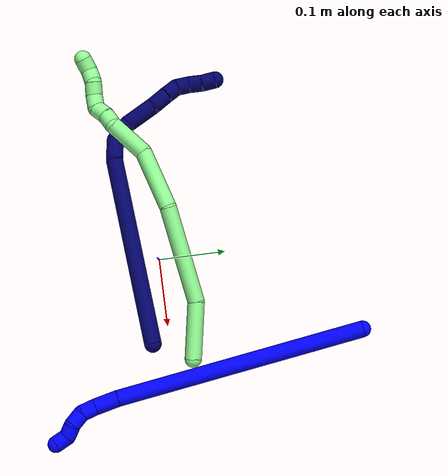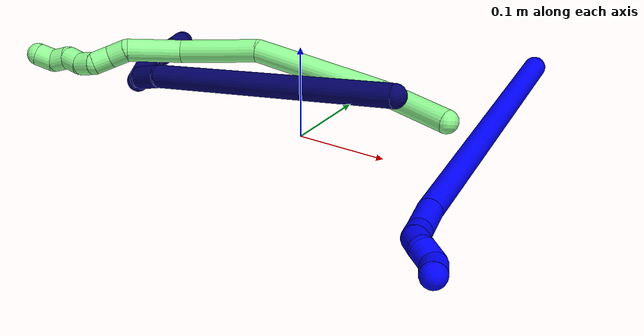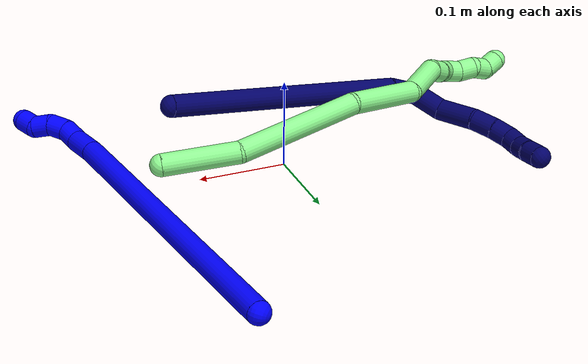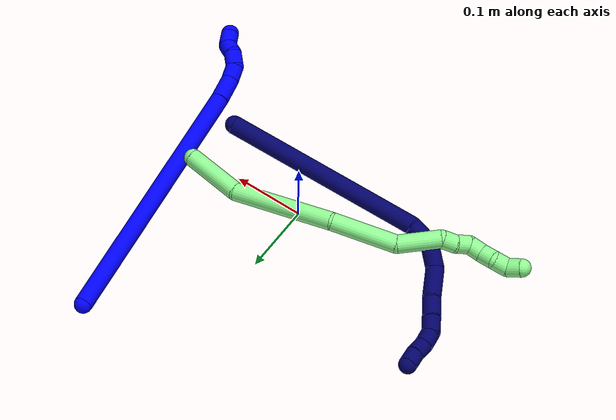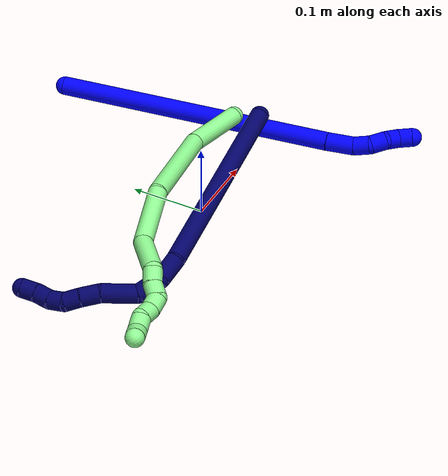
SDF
<sdf version="1.7">
 <world name="default">
  <model name="photoneo_s_sensor">
   <static>1</static>
   <pose>0 0 2 1.57079 1.57079 3.14159</pose>
   <link name="link">
    <inertial><mass>0.1</mass></inertial>
    <sensor name="sensor" type="depth">
     <update_rate>30</update_rate>
     <camera>
      <horizontal_fov>1.22</horizontal_fov>
      <image><width>1920</width><height>1200</height><format>B8G8R8</format></image>
      <clip><near>0.1</near><far>4</far></clip>
      <depth_camera><output>points</output></depth_camera>
     </camera>
     <plugin name="camera_plugin" filename="libgazebo_ros_depth_camera.so">
      <baseline>0.2</baseline>
      <alwaysOn>1</alwaysOn>
      <updateRate>0.0</updateRate>
      <cameraName>camera_ir</cameraName>
      <imageTopicName>/camera/color/image_raw</imageTopicName>
      <cameraInfoTopicName>/camera/color/camera_info</cameraInfoTopicName>
      <depthImageTopicName>/camera/depth/image_raw</depthImageTopicName>
      <depthImageCameraInfoTopicName>/camera/depth/camera_info</depthImageCameraInfoTopicName>
      <pointCloudTopicName>/camera/depth/points</pointCloudTopicName>
      <frameName>fr_optical</frameName>
      <pointCloudCutoff>0.1</pointCloudCutoff>
      <pointCloudCutoffMax>2.0</pointCloudCutoffMax>
      <distortionK1>0</distortionK1>
      <distortionK2>0</distortionK2>
      <distortionK3>0</distortionK3>
      <distortionT1>0</distortionT1>
      <distortionT2>0</distortionT2>
      <CxPrime>0</CxPrime>
      <Cx>0</Cx>
      <Cy>0</Cy>
      <focalLength>0</focalLength>
      <hackBaseline>0</hackBaseline>
     </plugin>
    </sensor>
   </link>
  </model>
  <model name="bin">
   <static>1</static>
   <link name="bottom">
    <collision name="collision-bottom">
     <pose>0 0 -0.01 0 -0 0</pose>
     <geometry><box><size>0.8 0.6 0.02</size></box></geometry>
     <surface>
      <friction><ode><mu>100</mu><mu2>100</mu2></ode></friction>
      <contact><collide_bitmask>65535</collide_bitmask></contact>
     </surface>
    </collision>
   </link>
   <link name="west_wall">
    <collision name="collision-west_wall">
     <pose>-0.41 0 0.1 0 -0 0</pose>
     <geometry><box><size>0.02 0.6 0.2</size></box></geometry>
     <surface>
      <friction><ode><mu>100</mu><mu2>100</mu2></ode></friction>
      <contact><collide_bitmask>65535</collide_bitmask></contact>
     </surface>
    </collision>
   </link>
   <link name="east_wall">
    <collision name="collision-east_wall">
     <pose>0.41 0 0.1 0 -0 0</pose>
     <geometry><box><size>0.02 0.6 0.2</size></box></geometry>
     <surface>
      <friction><ode><mu>100</mu><mu2>100</mu2></ode></friction>
      <contact><collide_bitmask>65535</collide_bitmask></contact>
     </surface>
    </collision>
   </link>
   <link name="south_wall">
    <collision name="collision-south_wall">
     <pose>0 -0.31 0.1 0 -0 0</pose>
     <geometry><box><size>0.8 0.02 0.2</size></box></geometry>
     <surface>
      <friction><ode><mu>100</mu><mu2>100</mu2></ode></friction>
      <contact><collide_bitmask>65535</collide_bitmask></contact>
     </surface>
    </collision>
   </link>
   <link name="north_wall">
    <collision name="collision-north_wall">
     <pose>0 0.31 0.1 0 -0 0</pose>
     <geometry><box><size>0.8 0.02 0.2</size></box></geometry>
     <surface>
      <friction><ode><mu>100</mu><mu2>100</mu2></ode></friction>
      <contact><collide_bitmask>65535</collide_bitmask></contact>
     </surface>
    </collision>
   </link>
  </model>
  <model name="1">
   <static>0</static>
   <link name="1">
    <collision name="collision-cylinder-e_1_1_4">
     <pose>-0.042303 -0.108817 -0.149277 2.51169 -0.225121 -0.66793</pose>
     <geometry><cylinder><radius>0.0125</radius><length>0.379021</length></cylinder></geometry>
     <surface>
      <friction><ode><mu>1.16</mu><mu2>1.16</mu2><slip1>0</slip1><slip2>0</slip2></ode></friction>
      <contact><ode><kp>1e+06</kp><kd>1</kd><max_vel>0</max_vel><min_depth>0.001</min_depth></ode></contact>
     </surface>
    </collision>
    <visual name="visual-cylinder-e_1_1_4">
     <pose>-0.042303 -0.108817 -0.149277 2.51169 -0.225121 -0.66793</pose>
     <geometry><cylinder><radius>0.0125</radius><length>0.379021</length></cylinder></geometry>
     <material><ambient>0 0 1 1</ambient></material>
    </visual>
    <collision name="collision-cylinder-e_2_4_5">
     <pose>-0.089009 -0.22689 -0.313924 2.5996 -0.240593 -0.820768</pose>
     <geometry><cylinder><radius>0.0125</radius><length>0.036948</length></cylinder></geometry>
     <surface>
      <friction><ode><mu>1.16</mu><mu2>1.16</mu2><slip1>0</slip1><slip2>0</slip2></ode></friction>
      <contact><ode><kp>1e+06</kp><kd>1</kd><max_vel>0</max_vel><min_depth>0.001</min_depth></ode></contact>
     </surface>
    </collision>
    <visual name="visual-cylinder-e_2_4_5">
     <pose>-0.089009 -0.22689 -0.313924 2.5996 -0.240593 -0.820768</pose>
     <geometry><cylinder><radius>0.0125</radius><length>0.036948</length></cylinder></geometry>
     <material><ambient>0 0 1 1</ambient></material>
    </visual>
    <collision name="collision-cylinder-e_3_5_6">
     <pose>-0.093343 -0.241289 -0.339176 2.66167 0.006055 0.024747</pose>
     <geometry><cylinder><radius>0.0125</radius><length>0.022282</length></cylinder></geometry>
     <surface>
      <friction><ode><mu>1.16</mu><mu2>1.16</mu2><slip1>0</slip1><slip2>0</slip2></ode></friction>
      <contact><ode><kp>1e+06</kp><kd>1</kd><max_vel>0</max_vel><min_depth>0.001</min_depth></ode></contact>
     </surface>
    </collision>
    <visual name="visual-cylinder-e_3_5_6">
     <pose>-0.093343 -0.241289 -0.339176 2.66167 0.006055 0.024747</pose>
     <geometry><cylinder><radius>0.0125</radius><length>0.022282</length></cylinder></geometry>
     <material><ambient>0 0 1 1</ambient></material>
    </visual>
    <collision name="collision-cylinder-e_4_6_7">
     <pose>-0.09368 -0.246683 -0.359862 3.11847 -0.037419 -2.03448</pose>
     <geometry><cylinder><radius>0.0125</radius><length>0.021628</length></cylinder></geometry>
     <surface>
      <friction><ode><mu>1.16</mu><mu2>1.16</mu2><slip1>0</slip1><slip2>0</slip2></ode></friction>
      <contact><ode><kp>1e+06</kp><kd>1</kd><max_vel>0</max_vel><min_depth>0.001</min_depth></ode></contact>
     </surface>
    </collision>
    <visual name="visual-cylinder-e_4_6_7">
     <pose>-0.09368 -0.246683 -0.359862 3.11847 -0.037419 -2.03448</pose>
     <geometry><cylinder><radius>0.0125</radius><length>0.021628</length></cylinder></geometry>
     <material><ambient>0 0 1 1</ambient></material>
    </visual>
    <collision name="collision-cylinder-e_5_7_8">
     <pose>-0.097488 -0.24413 -0.379679 -2.84015 -0.34609 1.7109</pose>
     <geometry><cylinder><radius>0.0125</radius><length>0.020068</length></cylinder></geometry>
     <surface>
      <friction><ode><mu>1.16</mu><mu2>1.16</mu2><slip1>0</slip1><slip2>0</slip2></ode></friction>
      <contact><ode><kp>1e+06</kp><kd>1</kd><max_vel>0</max_vel><min_depth>0.001</min_depth></ode></contact>
     </surface>
    </collision>
    <visual name="visual-cylinder-e_5_7_8">
     <pose>-0.097488 -0.24413 -0.379679 -2.84015 -0.34609 1.7109</pose>
     <geometry><cylinder><radius>0.0125</radius><length>0.020068</length></cylinder></geometry>
     <material><ambient>0 0 1 1</ambient></material>
    </visual>
    <collision name="collision-cylinder-e_6_8_2">
     <pose>-0.101852 -0.244468 -0.398166 2.82148 -0.095842 -0.577529</pose>
     <geometry><cylinder><radius>0.0125</radius><length>0.020053</length></cylinder></geometry>
     <surface>
      <friction><ode><mu>1.16</mu><mu2>1.16</mu2><slip1>0</slip1><slip2>0</slip2></ode></friction>
      <contact><ode><kp>1e+06</kp><kd>1</kd><max_vel>0</max_vel><min_depth>0.001</min_depth></ode></contact>
     </surface>
    </collision>
    <visual name="visual-cylinder-e_6_8_2">
     <pose>-0.101852 -0.244468 -0.398166 2.82148 -0.095842 -0.577529</pose>
     <geometry><cylinder><radius>0.0125</radius><length>0.020053</length></cylinder></geometry>
     <material><ambient>0 0 1 1</ambient></material>
    </visual>
    <collision name="collision-sphere-2">
     <pose>-0.102811 -0.247609 -0.407639 0 -0 0</pose>
     <geometry><sphere><radius>0.0125</radius></sphere></geometry>
     <surface>
      <friction><ode><mu>1.16</mu><mu2>1.16</mu2><slip1>0</slip1><slip2>0</slip2></ode></friction>
      <contact><ode><kp>1e+06</kp><kd>1</kd><max_vel>0</max_vel><min_depth>0.001</min_depth></ode></contact>
     </surface>
    </collision>
    <visual name="visual-sphere-2">
     <pose>-0.102811 -0.247609 -0.407639 0 -0 0</pose>
     <geometry><sphere><radius>0.0125</radius></sphere></geometry>
     <material><ambient>0 0 1 1</ambient></material>
    </visual>
    <collision name="collision-sphere-4">
     <pose>-0.084607 -0.217635 -0.298553 0 -0 0</pose>
     <geometry><sphere><radius>0.0125</radius></sphere></geometry>
     <surface>
      <friction><ode><mu>1.16</mu><mu2>1.16</mu2><slip1>0</slip1><slip2>0</slip2></ode></friction>
      <contact><ode><kp>1e+06</kp><kd>1</kd><max_vel>0</max_vel><min_depth>0.001</min_depth></ode></contact>
     </surface>
    </collision>
    <visual name="visual-sphere-4">
     <pose>-0.084607 -0.217635 -0.298553 0 -0 0</pose>
     <geometry><sphere><radius>0.0125</radius></sphere></geometry>
     <material><ambient>0 0 1 1</ambient></material>
    </visual>
    <collision name="collision-sphere-1">
     <geometry><sphere><radius>0.0125</radius></sphere></geometry>
     <surface>
      <friction><ode><mu>1.16</mu><mu2>1.16</mu2><slip1>0</slip1><slip2>0</slip2></ode></friction>
      <contact><ode><kp>1e+06</kp><kd>1</kd><max_vel>0</max_vel><min_depth>0.001</min_depth></ode></contact>
     </surface>
    </collision>
    <visual name="visual-sphere-1">
     <geometry><sphere><radius>0.0125</radius></sphere></geometry>
     <material><ambient>0 0 1 1</ambient></material>
    </visual>
    <collision name="collision-sphere-8">
     <pose>-0.100892 -0.241328 -0.388692 0 -0 0</pose>
     <geometry><sphere><radius>0.0125</radius></sphere></geometry>
     <surface>
      <friction><ode><mu>1.16</mu><mu2>1.16</mu2><slip1>0</slip1><slip2>0</slip2></ode></friction>
      <contact><ode><kp>1e+06</kp><kd>1</kd><max_vel>0</max_vel><min_depth>0.001</min_depth></ode></contact>
     </surface>
    </collision>
    <visual name="visual-sphere-8">
     <pose>-0.100892 -0.241328 -0.388692 0 -0 0</pose>
     <geometry><sphere><radius>0.0125</radius></sphere></geometry>
     <material><ambient>0 0 1 1</ambient></material>
    </visual>
    <collision name="collision-sphere-5">
     <pose>-0.093411 -0.236145 -0.329294 0 -0 0</pose>
     <geometry><sphere><radius>0.0125</radius></sphere></geometry>
     <surface>
      <friction><ode><mu>1.16</mu><mu2>1.16</mu2><slip1>0</slip1><slip2>0</slip2></ode></friction>
      <contact><ode><kp>1e+06</kp><kd>1</kd><max_vel>0</max_vel><min_depth>0.001</min_depth></ode></contact>
     </surface>
    </collision>
    <visual name="visual-sphere-5">
     <pose>-0.093411 -0.236145 -0.329294 0 -0 0</pose>
     <geometry><sphere><radius>0.0125</radius></sphere></geometry>
     <material><ambient>0 0 1 1</ambient></material>
    </visual>
    <collision name="collision-sphere-6">
     <pose>-0.093276 -0.246433 -0.349059 0 -0 0</pose>
     <geometry><sphere><radius>0.0125</radius></sphere></geometry>
     <surface>
      <friction><ode><mu>1.16</mu><mu2>1.16</mu2><slip1>0</slip1><slip2>0</slip2></ode></friction>
      <contact><ode><kp>1e+06</kp><kd>1</kd><max_vel>0</max_vel><min_depth>0.001</min_depth></ode></contact>
     </surface>
    </collision>
    <visual name="visual-sphere-6">
     <pose>-0.093276 -0.246433 -0.349059 0 -0 0</pose>
     <geometry><sphere><radius>0.0125</radius></sphere></geometry>
     <material><ambient>0 0 1 1</ambient></material>
    </visual>
    <collision name="collision-sphere-7">
     <pose>-0.094085 -0.246932 -0.370666 0 -0 0</pose>
     <geometry><sphere><radius>0.0125</radius></sphere></geometry>
     <surface>
      <friction><ode><mu>1.16</mu><mu2>1.16</mu2><slip1>0</slip1><slip2>0</slip2></ode></friction>
      <contact><ode><kp>1e+06</kp><kd>1</kd><max_vel>0</max_vel><min_depth>0.001</min_depth></ode></contact>
     </surface>
    </collision>
    <visual name="visual-sphere-7">
     <pose>-0.094085 -0.246932 -0.370666 0 -0 0</pose>
     <geometry><sphere><radius>0.0125</radius></sphere></geometry>
     <material><ambient>0 0 1 1</ambient></material>
    </visual>
    <inertial>
     <pose>-0.054855 -0.140281 -0.198244 0 -0 0</pose>
     <mass>0.5</mass>
     <inertia>
      <ixx>0.000728</ixx>
      <ixy>0</ixy>
      <ixz>0</ixz>
      <iyy>-0.005294</iyy>
      <iyz>0</iyz>
      <izz>0.003604</izz>
     </inertia>
    </inertial>
   </link>
   <pose>0.14253 0.288501 0.012597 -2.43681 -1.34614 1.64263</pose>
  </model>
  <model name="7">
   <static>0</static>
   <link name="7">
    <collision name="collision-cylinder-e_1_1_4">
     <pose>-0.116466 -0.022878 0.072906 0.304074 -0.990158 -0.165079</pose>
     <geometry><cylinder><radius>0.0125</radius><length>0.27859</length></cylinder></geometry>
     <surface>
      <friction><ode><mu>1.16</mu><mu2>1.16</mu2><slip1>0</slip1><slip2>0</slip2></ode></friction>
      <contact><ode><kp>1e+06</kp><kd>1</kd><max_vel>0</max_vel><min_depth>0.001</min_depth></ode></contact>
     </surface>
    </collision>
    <visual name="visual-cylinder-e_1_1_4">
     <pose>-0.116466 -0.022878 0.072906 0.304074 -0.990158 -0.165079</pose>
     <geometry><cylinder><radius>0.0125</radius><length>0.27859</length></cylinder></geometry>
     <material><ambient>0.003922 0 0.403922 1</ambient></material>
    </visual>
    <collision name="collision-cylinder-e_2_4_5">
     <pose>-0.2477 -0.043952 0.152939 -0.248042 -1.10889 0.154084</pose>
     <geometry><cylinder><radius>0.0125</radius><length>0.032994</length></cylinder></geometry>
     <surface>
      <friction><ode><mu>1.16</mu><mu2>1.16</mu2><slip1>0</slip1><slip2>0</slip2></ode></friction>
      <contact><ode><kp>1e+06</kp><kd>1</kd><max_vel>0</max_vel><min_depth>0.001</min_depth></ode></contact>
     </surface>
    </collision>
    <visual name="visual-cylinder-e_2_4_5">
     <pose>-0.2477 -0.043952 0.152939 -0.248042 -1.10889 0.154084</pose>
     <geometry><cylinder><radius>0.0125</radius><length>0.032994</length></cylinder></geometry>
     <material><ambient>0.003922 0 0.403922 1</ambient></material>
    </visual>
    <collision name="collision-cylinder-e_3_5_6">
     <pose>-0.274842 -0.031748 0.165274 -1.10645 -0.816384 0.521979</pose>
     <geometry><cylinder><radius>0.0125</radius><length>0.033963</length></cylinder></geometry>
     <surface>
      <friction><ode><mu>1.16</mu><mu2>1.16</mu2><slip1>0</slip1><slip2>0</slip2></ode></friction>
      <contact><ode><kp>1e+06</kp><kd>1</kd><max_vel>0</max_vel><min_depth>0.001</min_depth></ode></contact>
     </surface>
    </collision>
    <visual name="visual-cylinder-e_3_5_6">
     <pose>-0.274842 -0.031748 0.165274 -1.10645 -0.816384 0.521979</pose>
     <geometry><cylinder><radius>0.0125</radius><length>0.033963</length></cylinder></geometry>
     <material><ambient>0.003922 0 0.403922 1</ambient></material>
    </visual>
    <collision name="collision-cylinder-e_4_6_7">
     <pose>-0.292727 -0.003411 0.184855 -0.89532 -0.235319 0.113396</pose>
     <geometry><cylinder><radius>0.0125</radius><length>0.047276</length></cylinder></geometry>
     <surface>
      <friction><ode><mu>1.16</mu><mu2>1.16</mu2><slip1>0</slip1><slip2>0</slip2></ode></friction>
      <contact><ode><kp>1e+06</kp><kd>1</kd><max_vel>0</max_vel><min_depth>0.001</min_depth></ode></contact>
     </surface>
    </collision>
    <visual name="visual-cylinder-e_4_6_7">
     <pose>-0.292727 -0.003411 0.184855 -0.89532 -0.235319 0.113396</pose>
     <geometry><cylinder><radius>0.0125</radius><length>0.047276</length></cylinder></geometry>
     <material><ambient>0.003922 0 0.403922 1</ambient></material>
    </visual>
    <collision name="collision-cylinder-e_5_7_8">
     <pose>-0.303803 0.024247 0.205535 -0.995102 -0.447715 0.246062</pose>
     <geometry><cylinder><radius>0.0125</radius><length>0.025707</length></cylinder></geometry>
     <surface>
      <friction><ode><mu>1.16</mu><mu2>1.16</mu2><slip1>0</slip1><slip2>0</slip2></ode></friction>
      <contact><ode><kp>1e+06</kp><kd>1</kd><max_vel>0</max_vel><min_depth>0.001</min_depth></ode></contact>
     </surface>
    </collision>
    <visual name="visual-cylinder-e_5_7_8">
     <pose>-0.303803 0.024247 0.205535 -0.995102 -0.447715 0.246062</pose>
     <geometry><cylinder><radius>0.0125</radius><length>0.025707</length></cylinder></geometry>
     <material><ambient>0.003922 0 0.403922 1</ambient></material>
    </visual>
    <collision name="collision-cylinder-e_6_8_9">
     <pose>-0.314453 0.042242 0.216086 -1.09715 -0.500418 0.309871</pose>
     <geometry><cylinder><radius>0.0125</radius><length>0.0212</length></cylinder></geometry>
     <surface>
      <friction><ode><mu>1.16</mu><mu2>1.16</mu2><slip1>0</slip1><slip2>0</slip2></ode></friction>
      <contact><ode><kp>1e+06</kp><kd>1</kd><max_vel>0</max_vel><min_depth>0.001</min_depth></ode></contact>
     </surface>
    </collision>
    <visual name="visual-cylinder-e_6_8_9">
     <pose>-0.314453 0.042242 0.216086 -1.09715 -0.500418 0.309871</pose>
     <geometry><cylinder><radius>0.0125</radius><length>0.0212</length></cylinder></geometry>
     <material><ambient>0.003922 0 0.403922 1</ambient></material>
    </visual>
    <collision name="collision-cylinder-e_7_9_10">
     <pose>-0.31992 0.060062 0.22343 -1.2565 -0.037911 0.027542</pose>
     <geometry><cylinder><radius>0.0125</radius><length>0.020085</length></cylinder></geometry>
     <surface>
      <friction><ode><mu>1.16</mu><mu2>1.16</mu2><slip1>0</slip1><slip2>0</slip2></ode></friction>
      <contact><ode><kp>1e+06</kp><kd>1</kd><max_vel>0</max_vel><min_depth>0.001</min_depth></ode></contact>
     </surface>
    </collision>
    <visual name="visual-cylinder-e_7_9_10">
     <pose>-0.31992 0.060062 0.22343 -1.2565 -0.037911 0.027542</pose>
     <geometry><cylinder><radius>0.0125</radius><length>0.020085</length></cylinder></geometry>
     <material><ambient>0.003922 0 0.403922 1</ambient></material>
    </visual>
    <collision name="collision-cylinder-e_8_10_11">
     <pose>-0.317825 0.078495 0.230566 -1.14483 0.2484 -0.160546</pose>
     <geometry><cylinder><radius>0.0125</radius><length>0.02014</length></cylinder></geometry>
     <surface>
      <friction><ode><mu>1.16</mu><mu2>1.16</mu2><slip1>0</slip1><slip2>0</slip2></ode></friction>
      <contact><ode><kp>1e+06</kp><kd>1</kd><max_vel>0</max_vel><min_depth>0.001</min_depth></ode></contact>
     </surface>
    </collision>
    <visual name="visual-cylinder-e_8_10_11">
     <pose>-0.317825 0.078495 0.230566 -1.14483 0.2484 -0.160546</pose>
     <geometry><cylinder><radius>0.0125</radius><length>0.02014</length></cylinder></geometry>
     <material><ambient>0.003922 0 0.403922 1</ambient></material>
    </visual>
    <collision name="collision-cylinder-e_9_11_2">
     <pose>-0.314417 0.096309 0.239063 -1.10699 0.093128 -0.057572</pose>
     <geometry><cylinder><radius>0.0125</radius><length>0.020046</length></cylinder></geometry>
     <surface>
      <friction><ode><mu>1.16</mu><mu2>1.16</mu2><slip1>0</slip1><slip2>0</slip2></ode></friction>
      <contact><ode><kp>1e+06</kp><kd>1</kd><max_vel>0</max_vel><min_depth>0.001</min_depth></ode></contact>
     </surface>
    </collision>
    <visual name="visual-cylinder-e_9_11_2">
     <pose>-0.314417 0.096309 0.239063 -1.10699 0.093128 -0.057572</pose>
     <geometry><cylinder><radius>0.0125</radius><length>0.020046</length></cylinder></geometry>
     <material><ambient>0.003922 0 0.403922 1</ambient></material>
    </visual>
    <collision name="collision-sphere-2">
     <pose>-0.313485 0.105234 0.243528 0 -0 0</pose>
     <geometry><sphere><radius>0.0125</radius></sphere></geometry>
     <surface>
      <friction><ode><mu>1.16</mu><mu2>1.16</mu2><slip1>0</slip1><slip2>0</slip2></ode></friction>
      <contact><ode><kp>1e+06</kp><kd>1</kd><max_vel>0</max_vel><min_depth>0.001</min_depth></ode></contact>
     </surface>
    </collision>
    <visual name="visual-sphere-2">
     <pose>-0.313485 0.105234 0.243528 0 -0 0</pose>
     <geometry><sphere><radius>0.0125</radius></sphere></geometry>
     <material><ambient>0.003922 0 0.403922 1</ambient></material>
    </visual>
    <collision name="collision-sphere-11">
     <pose>-0.315349 0.087384 0.234599 0 -0 0</pose>
     <geometry><sphere><radius>0.0125</radius></sphere></geometry>
     <surface>
      <friction><ode><mu>1.16</mu><mu2>1.16</mu2><slip1>0</slip1><slip2>0</slip2></ode></friction>
      <contact><ode><kp>1e+06</kp><kd>1</kd><max_vel>0</max_vel><min_depth>0.001</min_depth></ode></contact>
     </surface>
    </collision>
    <visual name="visual-sphere-11">
     <pose>-0.315349 0.087384 0.234599 0 -0 0</pose>
     <geometry><sphere><radius>0.0125</radius></sphere></geometry>
     <material><ambient>0.003922 0 0.403922 1</ambient></material>
    </visual>
    <collision name="collision-sphere-10">
     <pose>-0.320301 0.069606 0.226532 0 -0 0</pose>
     <geometry><sphere><radius>0.0125</radius></sphere></geometry>
     <surface>
      <friction><ode><mu>1.16</mu><mu2>1.16</mu2><slip1>0</slip1><slip2>0</slip2></ode></friction>
      <contact><ode><kp>1e+06</kp><kd>1</kd><max_vel>0</max_vel><min_depth>0.001</min_depth></ode></contact>
     </surface>
    </collision>
    <visual name="visual-sphere-10">
     <pose>-0.320301 0.069606 0.226532 0 -0 0</pose>
     <geometry><sphere><radius>0.0125</radius></sphere></geometry>
     <material><ambient>0.003922 0 0.403922 1</ambient></material>
    </visual>
    <collision name="collision-sphere-9">
     <pose>-0.319539 0.050519 0.220328 0 -0 0</pose>
     <geometry><sphere><radius>0.0125</radius></sphere></geometry>
     <surface>
      <friction><ode><mu>1.16</mu><mu2>1.16</mu2><slip1>0</slip1><slip2>0</slip2></ode></friction>
      <contact><ode><kp>1e+06</kp><kd>1</kd><max_vel>0</max_vel><min_depth>0.001</min_depth></ode></contact>
     </surface>
    </collision>
    <visual name="visual-sphere-9">
     <pose>-0.319539 0.050519 0.220328 0 -0 0</pose>
     <geometry><sphere><radius>0.0125</radius></sphere></geometry>
     <material><ambient>0.003922 0 0.403922 1</ambient></material>
    </visual>
    <collision name="collision-sphere-4">
     <pose>-0.232932 -0.045757 0.145812 0 -0 0</pose>
     <geometry><sphere><radius>0.0125</radius></sphere></geometry>
     <surface>
      <friction><ode><mu>1.16</mu><mu2>1.16</mu2><slip1>0</slip1><slip2>0</slip2></ode></friction>
      <contact><ode><kp>1e+06</kp><kd>1</kd><max_vel>0</max_vel><min_depth>0.001</min_depth></ode></contact>
     </surface>
    </collision>
    <visual name="visual-sphere-4">
     <pose>-0.232932 -0.045757 0.145812 0 -0 0</pose>
     <geometry><sphere><radius>0.0125</radius></sphere></geometry>
     <material><ambient>0.003922 0 0.403922 1</ambient></material>
    </visual>
    <collision name="collision-sphere-1">
     <geometry><sphere><radius>0.0125</radius></sphere></geometry>
     <surface>
      <friction><ode><mu>1.16</mu><mu2>1.16</mu2><slip1>0</slip1><slip2>0</slip2></ode></friction>
      <contact><ode><kp>1e+06</kp><kd>1</kd><max_vel>0</max_vel><min_depth>0.001</min_depth></ode></contact>
     </surface>
    </collision>
    <visual name="visual-sphere-1">
     <geometry><sphere><radius>0.0125</radius></sphere></geometry>
     <material><ambient>0.003922 0 0.403922 1</ambient></material>
    </visual>
    <collision name="collision-sphere-8">
     <pose>-0.309367 0.033966 0.211843 0 -0 0</pose>
     <geometry><sphere><radius>0.0125</radius></sphere></geometry>
     <surface>
      <friction><ode><mu>1.16</mu><mu2>1.16</mu2><slip1>0</slip1><slip2>0</slip2></ode></friction>
      <contact><ode><kp>1e+06</kp><kd>1</kd><max_vel>0</max_vel><min_depth>0.001</min_depth></ode></contact>
     </surface>
    </collision>
    <visual name="visual-sphere-8">
     <pose>-0.309367 0.033966 0.211843 0 -0 0</pose>
     <geometry><sphere><radius>0.0125</radius></sphere></geometry>
     <material><ambient>0.003922 0 0.403922 1</ambient></material>
    </visual>
    <collision name="collision-sphere-5">
     <pose>-0.262469 -0.042147 0.160065 0 -0 0</pose>
     <geometry><sphere><radius>0.0125</radius></sphere></geometry>
     <surface>
      <friction><ode><mu>1.16</mu><mu2>1.16</mu2><slip1>0</slip1><slip2>0</slip2></ode></friction>
      <contact><ode><kp>1e+06</kp><kd>1</kd><max_vel>0</max_vel><min_depth>0.001</min_depth></ode></contact>
     </surface>
    </collision>
    <visual name="visual-sphere-5">
     <pose>-0.262469 -0.042147 0.160065 0 -0 0</pose>
     <geometry><sphere><radius>0.0125</radius></sphere></geometry>
     <material><ambient>0.003922 0 0.403922 1</ambient></material>
    </visual>
    <collision name="collision-sphere-6">
     <pose>-0.287216 -0.02135 0.170482 0 -0 0</pose>
     <geometry><sphere><radius>0.0125</radius></sphere></geometry>
     <surface>
      <friction><ode><mu>1.16</mu><mu2>1.16</mu2><slip1>0</slip1><slip2>0</slip2></ode></friction>
      <contact><ode><kp>1e+06</kp><kd>1</kd><max_vel>0</max_vel><min_depth>0.001</min_depth></ode></contact>
     </surface>
    </collision>
    <visual name="visual-sphere-6">
     <pose>-0.287216 -0.02135 0.170482 0 -0 0</pose>
     <geometry><sphere><radius>0.0125</radius></sphere></geometry>
     <material><ambient>0.003922 0 0.403922 1</ambient></material>
    </visual>
    <collision name="collision-sphere-7">
     <pose>-0.298239 0.014528 0.199227 0 -0 0</pose>
     <geometry><sphere><radius>0.0125</radius></sphere></geometry>
     <surface>
      <friction><ode><mu>1.16</mu><mu2>1.16</mu2><slip1>0</slip1><slip2>0</slip2></ode></friction>
      <contact><ode><kp>1e+06</kp><kd>1</kd><max_vel>0</max_vel><min_depth>0.001</min_depth></ode></contact>
     </surface>
    </collision>
    <visual name="visual-sphere-7">
     <pose>-0.298239 0.014528 0.199227 0 -0 0</pose>
     <geometry><sphere><radius>0.0125</radius></sphere></geometry>
     <material><ambient>0.003922 0 0.403922 1</ambient></material>
    </visual>
    <inertial>
     <pose>-0.194796 -0.005653 0.126995 0 -0 0</pose>
     <mass>0.5</mass>
     <inertia>
      <ixx>0.000819</ixx>
      <ixy>0</ixy>
      <ixz>0</ixz>
      <iyy>0.001648</iyy>
      <iyz>0</iyz>
      <izz>0.001825</izz>
     </inertia>
    </inertial>
   </link>
   <pose>0.122444 -0.022015 0.083441 -0.437486 -0.698655 0.157146</pose>
  </model>
  <model name="13">
   <static>0</static>
   <link name="13">
    <collision name="collision-cylinder-e_1_1_4">
     <pose>-0.037692 0.012034 0.015397 -0.663436 -1.09249 0.412845</pose>
     <geometry><cylinder><radius>0.0125</radius><length>0.084912</length></cylinder></geometry>
     <surface>
      <friction><ode><mu>1.16</mu><mu2>1.16</mu2><slip1>0</slip1><slip2>0</slip2></ode></friction>
      <contact><ode><kp>1e+06</kp><kd>1</kd><max_vel>0</max_vel><min_depth>0.001</min_depth></ode></contact>
     </surface>
    </collision>
    <visual name="visual-cylinder-e_1_1_4">
     <pose>-0.037692 0.012034 0.015397 -0.663436 -1.09249 0.412845</pose>
     <geometry><cylinder><radius>0.0125</radius><length>0.084912</length></cylinder></geometry>
     <material><ambient>0.564706 0.984314 0.572549 1</ambient></material>
    </visual>
    <collision name="collision-cylinder-e_2_4_5">
     <pose>-0.14456 0.020722 0.052168 0.155309 -1.26769 -0.11426</pose>
     <geometry><cylinder><radius>0.0125</radius><length>0.144963</length></cylinder></geometry>
     <surface>
      <friction><ode><mu>1.16</mu><mu2>1.16</mu2><slip1>0</slip1><slip2>0</slip2></ode></friction>
      <contact><ode><kp>1e+06</kp><kd>1</kd><max_vel>0</max_vel><min_depth>0.001</min_depth></ode></contact>
     </surface>
    </collision>
    <visual name="visual-cylinder-e_2_4_5">
     <pose>-0.14456 0.020722 0.052168 0.155309 -1.26769 -0.11426</pose>
     <geometry><cylinder><radius>0.0125</radius><length>0.144963</length></cylinder></geometry>
     <material><ambient>0.564706 0.984314 0.572549 1</ambient></material>
    </visual>
    <collision name="collision-cylinder-e_3_5_6">
     <pose>-0.258668 0.015635 0.073129 1.80398 -1.531 -1.76508</pose>
     <geometry><cylinder><radius>0.0125</radius><length>0.089932</length></cylinder></geometry>
     <surface>
      <friction><ode><mu>1.16</mu><mu2>1.16</mu2><slip1>0</slip1><slip2>0</slip2></ode></friction>
      <contact><ode><kp>1e+06</kp><kd>1</kd><max_vel>0</max_vel><min_depth>0.001</min_depth></ode></contact>
     </surface>
    </collision>
    <visual name="visual-cylinder-e_3_5_6">
     <pose>-0.258668 0.015635 0.073129 1.80398 -1.531 -1.76508</pose>
     <geometry><cylinder><radius>0.0125</radius><length>0.089932</length></cylinder></geometry>
     <material><ambient>0.564706 0.984314 0.572549 1</ambient></material>
    </visual>
    <collision name="collision-cylinder-e_4_6_7">
     <pose>-0.329693 -0.000373 0.071629 1.64684 -1.06925 -1.13717</pose>
     <geometry><cylinder><radius>0.0125</radius><length>0.05952</length></cylinder></geometry>
     <surface>
      <friction><ode><mu>1.16</mu><mu2>1.16</mu2><slip1>0</slip1><slip2>0</slip2></ode></friction>
      <contact><ode><kp>1e+06</kp><kd>1</kd><max_vel>0</max_vel><min_depth>0.001</min_depth></ode></contact>
     </surface>
    </collision>
    <visual name="visual-cylinder-e_4_6_7">
     <pose>-0.329693 -0.000373 0.071629 1.64684 -1.06925 -1.13717</pose>
     <geometry><cylinder><radius>0.0125</radius><length>0.05952</length></cylinder></geometry>
     <material><ambient>0.564706 0.984314 0.572549 1</ambient></material>
    </visual>
    <collision name="collision-cylinder-e_5_7_8">
     <pose>-0.365358 -0.015227 0.066867 2.98307 -1.19998 -2.91043</pose>
     <geometry><cylinder><radius>0.0125</radius><length>0.020538</length></cylinder></geometry>
     <surface>
      <friction><ode><mu>1.16</mu><mu2>1.16</mu2><slip1>0</slip1><slip2>0</slip2></ode></friction>
      <contact><ode><kp>1e+06</kp><kd>1</kd><max_vel>0</max_vel><min_depth>0.001</min_depth></ode></contact>
     </surface>
    </collision>
    <visual name="visual-cylinder-e_5_7_8">
     <pose>-0.365358 -0.015227 0.066867 2.98307 -1.19998 -2.91043</pose>
     <geometry><cylinder><radius>0.0125</radius><length>0.020538</length></cylinder></geometry>
     <material><ambient>0.564706 0.984314 0.572549 1</ambient></material>
    </visual>
    <collision name="collision-cylinder-e_6_8_9">
     <pose>-0.383436 -0.019167 0.059029 2.46359 -1.00972 -2.00571</pose>
     <geometry><cylinder><radius>0.0125</radius><length>0.020094</length></cylinder></geometry>
     <surface>
      <friction><ode><mu>1.16</mu><mu2>1.16</mu2><slip1>0</slip1><slip2>0</slip2></ode></friction>
      <contact><ode><kp>1e+06</kp><kd>1</kd><max_vel>0</max_vel><min_depth>0.001</min_depth></ode></contact>
     </surface>
    </collision>
    <visual name="visual-cylinder-e_6_8_9">
     <pose>-0.383436 -0.019167 0.059029 2.46359 -1.00972 -2.00571</pose>
     <geometry><cylinder><radius>0.0125</radius><length>0.020094</length></cylinder></geometry>
     <material><ambient>0.564706 0.984314 0.572549 1</ambient></material>
    </visual>
    <collision name="collision-cylinder-e_7_9_10">
     <pose>-0.401703 -0.020338 0.054992 -1.51309 -1.35047 1.2945</pose>
     <geometry><cylinder><radius>0.0125</radius><length>0.020005</length></cylinder></geometry>
     <surface>
      <friction><ode><mu>1.16</mu><mu2>1.16</mu2><slip1>0</slip1><slip2>0</slip2></ode></friction>
      <contact><ode><kp>1e+06</kp><kd>1</kd><max_vel>0</max_vel><min_depth>0.001</min_depth></ode></contact>
     </surface>
    </collision>
    <visual name="visual-cylinder-e_7_9_10">
     <pose>-0.401703 -0.020338 0.054992 -1.51309 -1.35047 1.2945</pose>
     <geometry><cylinder><radius>0.0125</radius><length>0.020005</length></cylinder></geometry>
     <material><ambient>0.564706 0.984314 0.572549 1</ambient></material>
    </visual>
    <collision name="collision-cylinder-e_8_10_11">
     <pose>-0.420642 -0.016521 0.058763 -0.421552 -1.16033 0.278635</pose>
     <geometry><cylinder><radius>0.0125</radius><length>0.020021</length></cylinder></geometry>
     <surface>
      <friction><ode><mu>1.16</mu><mu2>1.16</mu2><slip1>0</slip1><slip2>0</slip2></ode></friction>
      <contact><ode><kp>1e+06</kp><kd>1</kd><max_vel>0</max_vel><min_depth>0.001</min_depth></ode></contact>
     </surface>
    </collision>
    <visual name="visual-cylinder-e_8_10_11">
     <pose>-0.420642 -0.016521 0.058763 -0.421552 -1.16033 0.278635</pose>
     <geometry><cylinder><radius>0.0125</radius><length>0.020021</length></cylinder></geometry>
     <material><ambient>0.564706 0.984314 0.572549 1</ambient></material>
    </visual>
    <collision name="collision-cylinder-e_9_11_12">
     <pose>-0.439616 -0.013682 0.060782 -2.504 -1.36709 2.37162</pose>
     <geometry><cylinder><radius>0.0125</radius><length>0.020002</length></cylinder></geometry>
     <surface>
      <friction><ode><mu>1.16</mu><mu2>1.16</mu2><slip1>0</slip1><slip2>0</slip2></ode></friction>
      <contact><ode><kp>1e+06</kp><kd>1</kd><max_vel>0</max_vel><min_depth>0.001</min_depth></ode></contact>
     </surface>
    </collision>
    <visual name="visual-cylinder-e_9_11_12">
     <pose>-0.439616 -0.013682 0.060782 -2.504 -1.36709 2.37162</pose>
     <geometry><cylinder><radius>0.0125</radius><length>0.020002</length></cylinder></geometry>
     <material><ambient>0.564706 0.984314 0.572549 1</ambient></material>
    </visual>
    <collision name="collision-cylinder-e_10_12_2">
     <pose>-0.458384 -0.01541 0.062474 0.72382 -1.11248 -0.462338</pose>
     <geometry><cylinder><radius>0.0125</radius><length>0.020014</length></cylinder></geometry>
     <surface>
      <friction><ode><mu>1.16</mu><mu2>1.16</mu2><slip1>0</slip1><slip2>0</slip2></ode></friction>
      <contact><ode><kp>1e+06</kp><kd>1</kd><max_vel>0</max_vel><min_depth>0.001</min_depth></ode></contact>
     </surface>
    </collision>
    <visual name="visual-cylinder-e_10_12_2">
     <pose>-0.458384 -0.01541 0.062474 0.72382 -1.11248 -0.462338</pose>
     <geometry><cylinder><radius>0.0125</radius><length>0.020014</length></cylinder></geometry>
     <material><ambient>0.564706 0.984314 0.572549 1</ambient></material>
    </visual>
    <collision name="collision-sphere-2">
     <pose>-0.467358 -0.018342 0.065791 0 -0 0</pose>
     <geometry><sphere><radius>0.0125</radius></sphere></geometry>
     <surface>
      <friction><ode><mu>1.16</mu><mu2>1.16</mu2><slip1>0</slip1><slip2>0</slip2></ode></friction>
      <contact><ode><kp>1e+06</kp><kd>1</kd><max_vel>0</max_vel><min_depth>0.001</min_depth></ode></contact>
     </surface>
    </collision>
    <visual name="visual-sphere-2">
     <pose>-0.467358 -0.018342 0.065791 0 -0 0</pose>
     <geometry><sphere><radius>0.0125</radius></sphere></geometry>
     <material><ambient>0.564706 0.984314 0.572549 1</ambient></material>
    </visual>
    <collision name="collision-sphere-12">
     <pose>-0.44941 -0.012478 0.059156 0 -0 0</pose>
     <geometry><sphere><radius>0.0125</radius></sphere></geometry>
     <surface>
      <friction><ode><mu>1.16</mu><mu2>1.16</mu2><slip1>0</slip1><slip2>0</slip2></ode></friction>
      <contact><ode><kp>1e+06</kp><kd>1</kd><max_vel>0</max_vel><min_depth>0.001</min_depth></ode></contact>
     </surface>
    </collision>
    <visual name="visual-sphere-12">
     <pose>-0.44941 -0.012478 0.059156 0 -0 0</pose>
     <geometry><sphere><radius>0.0125</radius></sphere></geometry>
     <material><ambient>0.564706 0.984314 0.572549 1</ambient></material>
    </visual>
    <collision name="collision-sphere-11">
     <pose>-0.429822 -0.014887 0.062408 0 -0 0</pose>
     <geometry><sphere><radius>0.0125</radius></sphere></geometry>
     <surface>
      <friction><ode><mu>1.16</mu><mu2>1.16</mu2><slip1>0</slip1><slip2>0</slip2></ode></friction>
      <contact><ode><kp>1e+06</kp><kd>1</kd><max_vel>0</max_vel><min_depth>0.001</min_depth></ode></contact>
     </surface>
    </collision>
    <visual name="visual-sphere-11">
     <pose>-0.429822 -0.014887 0.062408 0 -0 0</pose>
     <geometry><sphere><radius>0.0125</radius></sphere></geometry>
     <material><ambient>0.564706 0.984314 0.572549 1</ambient></material>
    </visual>
    <collision name="collision-sphere-10">
     <pose>-0.411463 -0.018156 0.055118 0 -0 0</pose>
     <geometry><sphere><radius>0.0125</radius></sphere></geometry>
     <surface>
      <friction><ode><mu>1.16</mu><mu2>1.16</mu2><slip1>0</slip1><slip2>0</slip2></ode></friction>
      <contact><ode><kp>1e+06</kp><kd>1</kd><max_vel>0</max_vel><min_depth>0.001</min_depth></ode></contact>
     </surface>
    </collision>
    <visual name="visual-sphere-10">
     <pose>-0.411463 -0.018156 0.055118 0 -0 0</pose>
     <geometry><sphere><radius>0.0125</radius></sphere></geometry>
     <material><ambient>0.564706 0.984314 0.572549 1</ambient></material>
    </visual>
    <collision name="collision-sphere-9">
     <pose>-0.391942 -0.022521 0.054865 0 -0 0</pose>
     <geometry><sphere><radius>0.0125</radius></sphere></geometry>
     <surface>
      <friction><ode><mu>1.16</mu><mu2>1.16</mu2><slip1>0</slip1><slip2>0</slip2></ode></friction>
      <contact><ode><kp>1e+06</kp><kd>1</kd><max_vel>0</max_vel><min_depth>0.001</min_depth></ode></contact>
     </surface>
    </collision>
    <visual name="visual-sphere-9">
     <pose>-0.391942 -0.022521 0.054865 0 -0 0</pose>
     <geometry><sphere><radius>0.0125</radius></sphere></geometry>
     <material><ambient>0.564706 0.984314 0.572549 1</ambient></material>
    </visual>
    <collision name="collision-sphere-4">
     <pose>-0.075383 0.024069 0.030793 0 -0 0</pose>
     <geometry><sphere><radius>0.0125</radius></sphere></geometry>
     <surface>
      <friction><ode><mu>1.16</mu><mu2>1.16</mu2><slip1>0</slip1><slip2>0</slip2></ode></friction>
      <contact><ode><kp>1e+06</kp><kd>1</kd><max_vel>0</max_vel><min_depth>0.001</min_depth></ode></contact>
     </surface>
    </collision>
    <visual name="visual-sphere-4">
     <pose>-0.075383 0.024069 0.030793 0 -0 0</pose>
     <geometry><sphere><radius>0.0125</radius></sphere></geometry>
     <material><ambient>0.564706 0.984314 0.572549 1</ambient></material>
    </visual>
    <collision name="collision-sphere-1">
     <geometry><sphere><radius>0.0125</radius></sphere></geometry>
     <surface>
      <friction><ode><mu>1.16</mu><mu2>1.16</mu2><slip1>0</slip1><slip2>0</slip2></ode></friction>
      <contact><ode><kp>1e+06</kp><kd>1</kd><max_vel>0</max_vel><min_depth>0.001</min_depth></ode></contact>
     </surface>
    </collision>
    <visual name="visual-sphere-1">
     <geometry><sphere><radius>0.0125</radius></sphere></geometry>
     <material><ambient>0.564706 0.984314 0.572549 1</ambient></material>
    </visual>
    <collision name="collision-sphere-8">
     <pose>-0.374929 -0.015814 0.063192 0 -0 0</pose>
     <geometry><sphere><radius>0.0125</radius></sphere></geometry>
     <surface>
      <friction><ode><mu>1.16</mu><mu2>1.16</mu2><slip1>0</slip1><slip2>0</slip2></ode></friction>
      <contact><ode><kp>1e+06</kp><kd>1</kd><max_vel>0</max_vel><min_depth>0.001</min_depth></ode></contact>
     </surface>
    </collision>
    <visual name="visual-sphere-8">
     <pose>-0.374929 -0.015814 0.063192 0 -0 0</pose>
     <geometry><sphere><radius>0.0125</radius></sphere></geometry>
     <material><ambient>0.564706 0.984314 0.572549 1</ambient></material>
    </visual>
    <collision name="collision-sphere-5">
     <pose>-0.213738 0.017375 0.073542 0 -0 0</pose>
     <geometry><sphere><radius>0.0125</radius></sphere></geometry>
     <surface>
      <friction><ode><mu>1.16</mu><mu2>1.16</mu2><slip1>0</slip1><slip2>0</slip2></ode></friction>
      <contact><ode><kp>1e+06</kp><kd>1</kd><max_vel>0</max_vel><min_depth>0.001</min_depth></ode></contact>
     </surface>
    </collision>
    <visual name="visual-sphere-5">
     <pose>-0.213738 0.017375 0.073542 0 -0 0</pose>
     <geometry><sphere><radius>0.0125</radius></sphere></geometry>
     <material><ambient>0.564706 0.984314 0.572549 1</ambient></material>
    </visual>
    <collision name="collision-sphere-6">
     <pose>-0.303598 0.013894 0.072715 0 -0 0</pose>
     <geometry><sphere><radius>0.0125</radius></sphere></geometry>
     <surface>
      <friction><ode><mu>1.16</mu><mu2>1.16</mu2><slip1>0</slip1><slip2>0</slip2></ode></friction>
      <contact><ode><kp>1e+06</kp><kd>1</kd><max_vel>0</max_vel><min_depth>0.001</min_depth></ode></contact>
     </surface>
    </collision>
    <visual name="visual-sphere-6">
     <pose>-0.303598 0.013894 0.072715 0 -0 0</pose>
     <geometry><sphere><radius>0.0125</radius></sphere></geometry>
     <material><ambient>0.564706 0.984314 0.572549 1</ambient></material>
    </visual>
    <collision name="collision-sphere-7">
     <pose>-0.355787 -0.014639 0.070542 0 -0 0</pose>
     <geometry><sphere><radius>0.0125</radius></sphere></geometry>
     <surface>
      <friction><ode><mu>1.16</mu><mu2>1.16</mu2><slip1>0</slip1><slip2>0</slip2></ode></friction>
      <contact><ode><kp>1e+06</kp><kd>1</kd><max_vel>0</max_vel><min_depth>0.001</min_depth></ode></contact>
     </surface>
    </collision>
    <visual name="visual-sphere-7">
     <pose>-0.355787 -0.014639 0.070542 0 -0 0</pose>
     <geometry><sphere><radius>0.0125</radius></sphere></geometry>
     <material><ambient>0.564706 0.984314 0.572549 1</ambient></material>
    </visual>
    <inertial>
     <pose>-0.23335 0.006784 0.054023 0 -0 0</pose>
     <mass>0.5</mass>
     <inertia><ixx>5.7e-05</ixx><ixy>0</ixy><ixz>0</ixz><iyy>0.000386</iyy><iyz>0</iyz><izz>0.0004</izz></inertia>
    </inertial>
   </link>
   <pose>0.152932 0.032036 0.043383 -0.471851 -0.126008 0.251488</pose>
  </model>
 </world>
</sdf>
